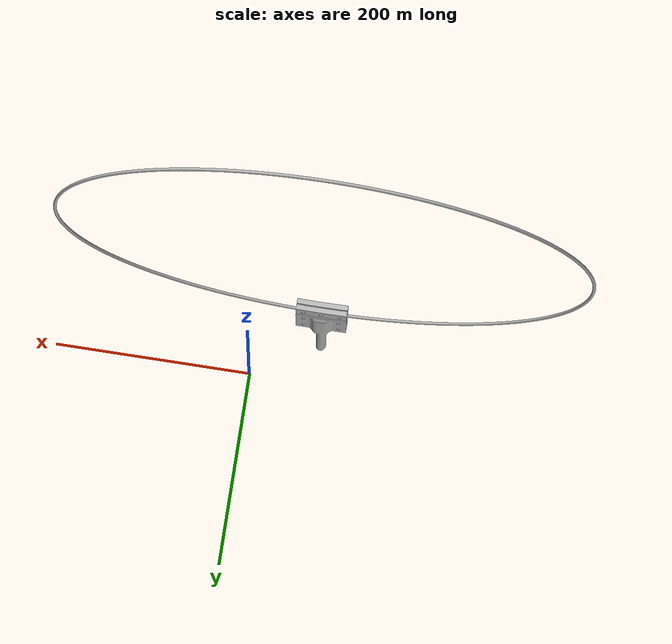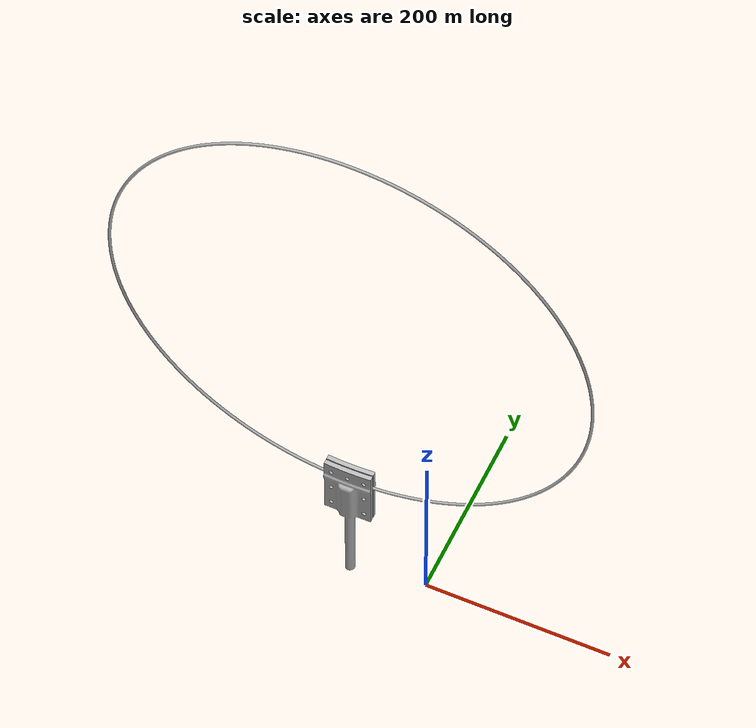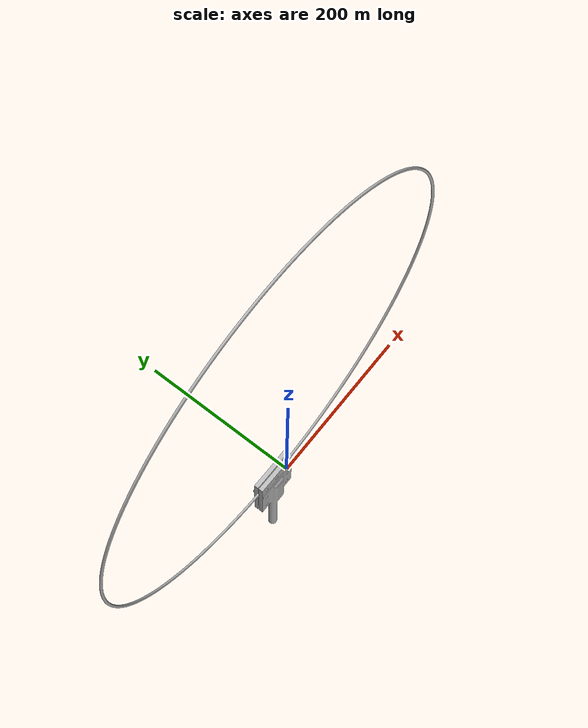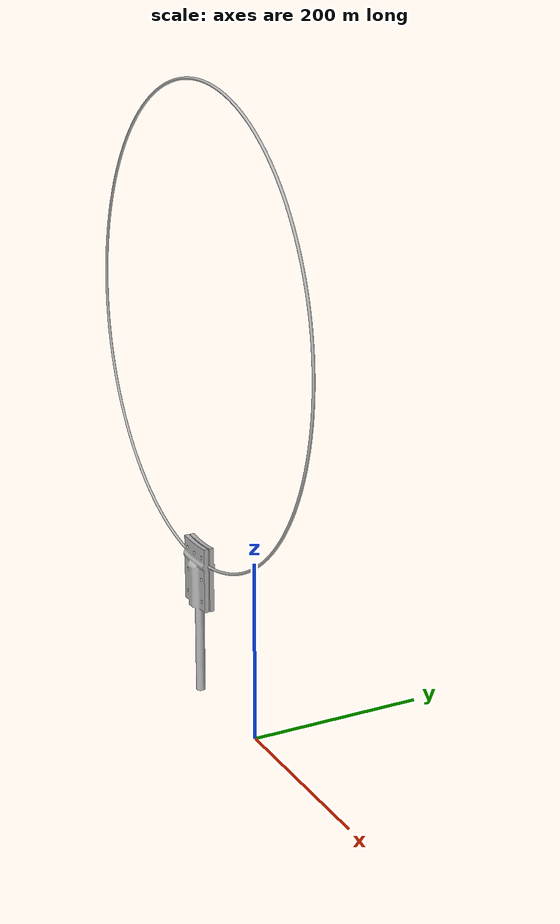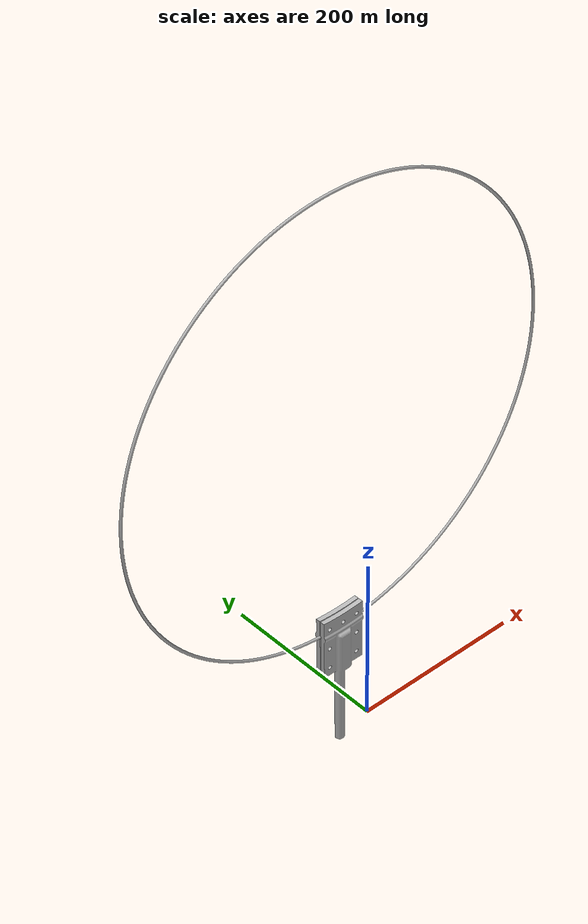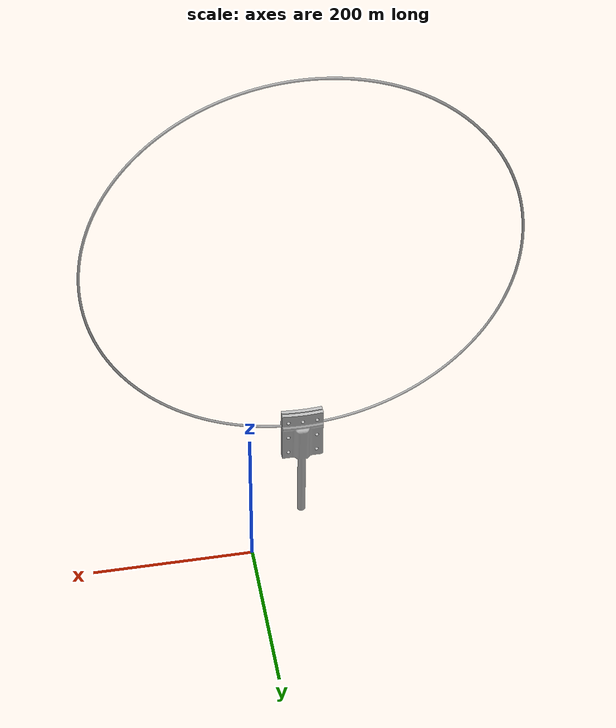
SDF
<?xml version="1.0"?>

<sdf version="1.9">
    <world name="world1">

        <include>
            <uri>model://arm</uri>
            <name>arm</name>
            <pose>0 0 0 0 0 0</pose>
        </include>

    </world>
</sdf>

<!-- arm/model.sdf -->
<sdf version="1.9">

  <model name="arm">

    <static>true</static>

    <link name="link">

      <visual name="visual">

        <geometry>

          <mesh>

            <uri>meshes/Traumfaenger_EXPORT_arm.obj</uri>

          </mesh>

        </geometry>

      </visual>

    </link>

  </model>

</sdf>
